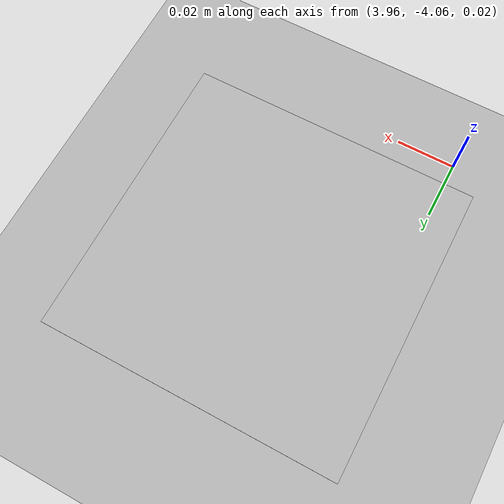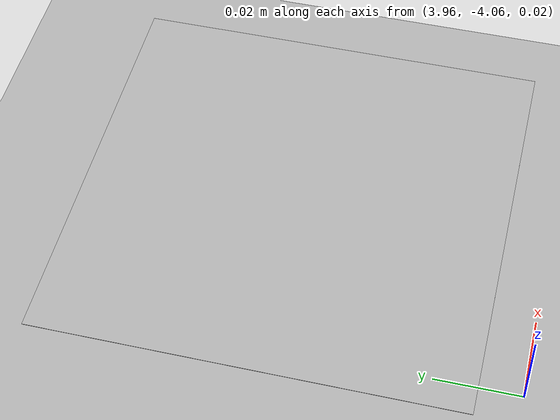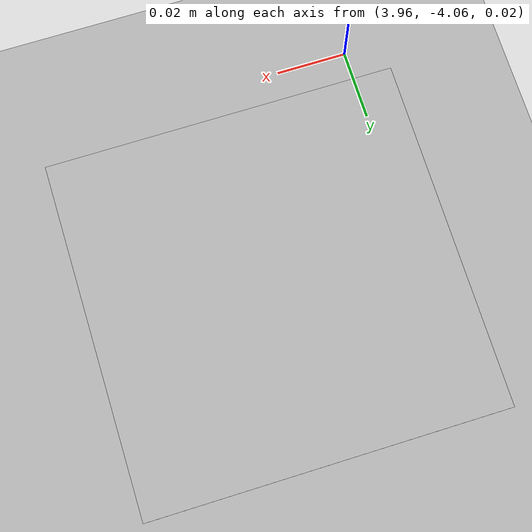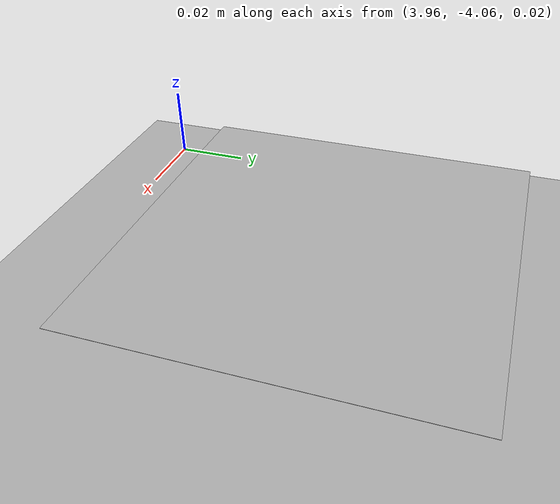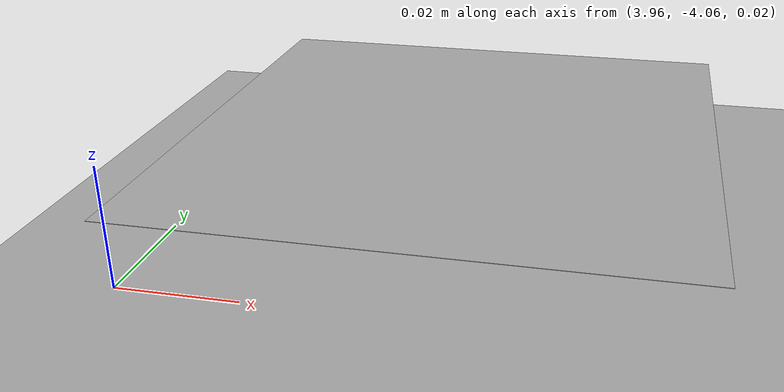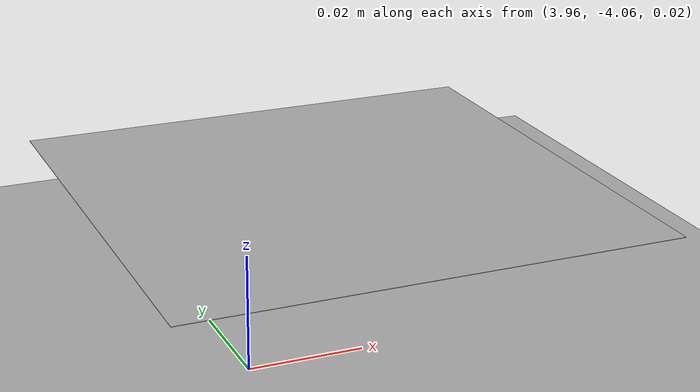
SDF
<?xml version="1.0" ?>
<sdf version="1.5">
  <world name="default">
    <scene>
      <sky>
        <clouds>
          <speed>12</speed>
        </clouds>
      </sky>
    </scene>
    <!-- A global light source -->
    <include>
      <uri>model://sun</uri>
    </include>

    <include>
      <uri>model://grass_plane_v1</uri>
    </include>

    <spherical_coordinates>
      <surface_model>EARTH_WGS84</surface_model>
      <latitude_deg>37.413229</latitude_deg>
      <longitude_deg>-121.997080</longitude_deg>
      <elevation>0</elevation>
    </spherical_coordinates>

    <!-- Add aruco marker -->
    <model name="aruco_marker">
      <include>
      <uri>model://aruco_marker</uri>
      <pose>4 -4 0.025 0 0 0</pose>
      </include>
    </model>

    <physics name='default_physics' default='0' type='ode'>
      <gravity>0 0 -9.8066</gravity>
      <ode>
        <solver>
          <type>quick</type>
          <iters>10</iters>
          <sor>1.3</sor>
          <use_dynamic_moi_rescaling>0</use_dynamic_moi_rescaling>
        </solver>
        <constraints>
          <cfm>0</cfm>
          <erp>0.2</erp>
          <contact_max_correcting_vel>100</contact_max_correcting_vel>
          <contact_surface_layer>0.001</contact_surface_layer>
        </constraints>
      </ode>
      <max_step_size>0.004</max_step_size>
      <real_time_factor>1</real_time_factor>
      <real_time_update_rate>250</real_time_update_rate>
      <magnetic_field>6.0e-6 2.3e-5 -4.2e-5</magnetic_field>
    </physics>

  </world>
</sdf>

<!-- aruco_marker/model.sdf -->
<sdf version="1.4"> <model name="aruco_marker">   <static>true</static>
    <link name="link">
      <collision name="collision">
        <geometry>
          <plane>
            <normal>0 0 1</normal>
            <size>0.1 0.1</size>
          </plane>
        </geometry>
        <surface>
          <friction>
            <ode>
              <mu>100</mu>
              <mu2>50</mu2>
            </ode>
          </friction>
        </surface>
      </collision>
      <visual name="visual">
        <cast_shadows>false</cast_shadows>
        <geometry>
          <plane>
            <normal>0 0 1</normal>
            <size>0.1 0.1</size>    </plane>    <mesh>
        <uri>model://aruco_marker/materials/textures/aruco_marker.dae</uri>
          </mesh>
        </geometry>
        <material>
          <script>
            <uri>model://aruco_marker/materials/scripts/</uri>
            <uri>model://aruco_marker/materials/textures/</uri>
            <name>ArucoMarker/Image</name>
          </script>
        </material>
      </visual>
    </link>   </model> </sdf>

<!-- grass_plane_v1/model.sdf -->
<sdf version="1.5">
  <model name="ground_plane">
    <static>true</static>
    <link name="link">
      <collision name="collision">
        <geometry>
          <plane>
            <normal>0 0 1</normal>
            <size>1000 1000</size>
          </plane>
        </geometry>
        <surface>
          <contact>
             <collide_bitmask>0xffff</collide_bitmask>
          </contact>
          <friction>
            <ode>
              <mu>100</mu>
              <mu2>50</mu2>
            </ode>
          </friction>
        </surface>
      </collision>
      <visual name="visual">
        <pose>0 0 0 0 0 0</pose>
        <cast_shadows>false</cast_shadows>
        <geometry>
          <mesh>
            <uri>file://grass_plane/meshes/grass_plane.dae</uri>
          </mesh>
        </geometry>
      </visual>
    </link>
  </model>
</sdf>
